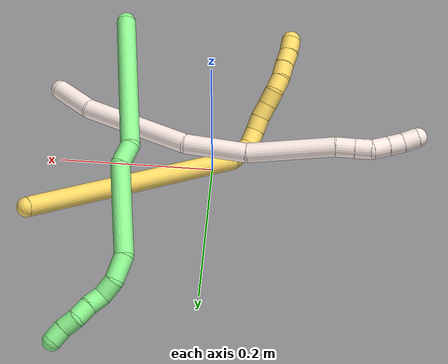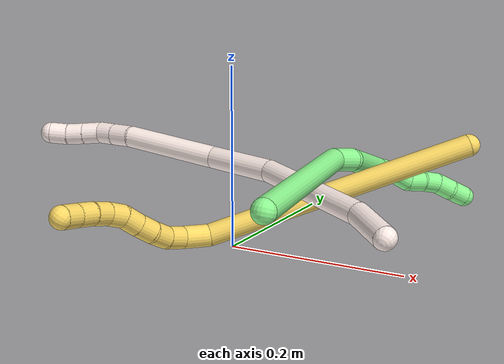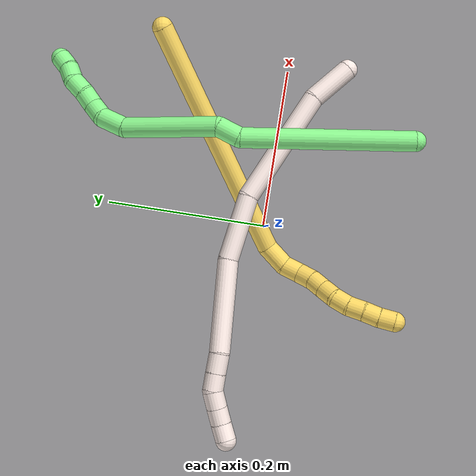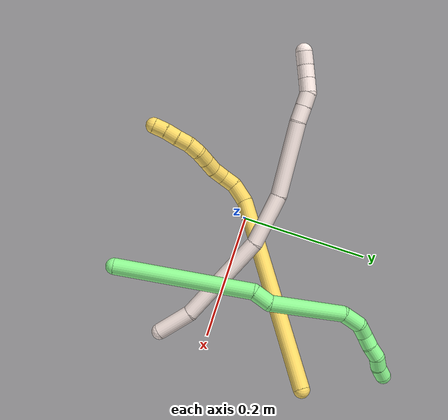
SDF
<sdf version="1.7">
 <world name="default">
  <model name="5">
   <static>0</static>
   <link name="5">
    <collision name="collision-cylinder-e_1_1_4">
     <pose>-0.067582 -0.102955 -0.090907 2.29413 -0.457275 -0.952592</pose>
     <geometry><cylinder><radius>0.0125</radius><length>0.306144</length></cylinder></geometry>
     <surface>
      <friction><ode><mu>1.16</mu><mu2>1.16</mu2><slip1>0</slip1><slip2>0</slip2></ode></friction>
      <contact><ode><kp>1e+06</kp><kd>1</kd><max_vel>0</max_vel><min_depth>0.001</min_depth></ode></contact>
     </surface>
    </collision>
    <visual name="visual-cylinder-e_1_1_4">
     <pose>-0.067582 -0.102955 -0.090907 2.29413 -0.457275 -0.952592</pose>
     <geometry><cylinder><radius>0.0125</radius><length>0.306144</length></cylinder></geometry>
     <material><ambient>1 0.858824 0.4 1</ambient></material>
    </visual>
    <collision name="collision-cylinder-e_2_4_5">
     <pose>-0.14579 -0.210552 -0.192295 2.72468 -0.747483 -2.15229</pose>
     <geometry><cylinder><radius>0.0125</radius><length>0.031262</length></cylinder></geometry>
     <surface>
      <friction><ode><mu>1.16</mu><mu2>1.16</mu2><slip1>0</slip1><slip2>0</slip2></ode></friction>
      <contact><ode><kp>1e+06</kp><kd>1</kd><max_vel>0</max_vel><min_depth>0.001</min_depth></ode></contact>
     </surface>
    </collision>
    <visual name="visual-cylinder-e_2_4_5">
     <pose>-0.14579 -0.210552 -0.192295 2.72468 -0.747483 -2.15229</pose>
     <geometry><cylinder><radius>0.0125</radius><length>0.031262</length></cylinder></geometry>
     <material><ambient>1 0.858824 0.4 1</ambient></material>
    </visual>
    <collision name="collision-cylinder-e_3_5_6">
     <pose>-0.165973 -0.215208 -0.208303 3.13921 -1.04656 -3.13746</pose>
     <geometry><cylinder><radius>0.0125</radius><length>0.022079</length></cylinder></geometry>
     <surface>
      <friction><ode><mu>1.16</mu><mu2>1.16</mu2><slip1>0</slip1><slip2>0</slip2></ode></friction>
      <contact><ode><kp>1e+06</kp><kd>1</kd><max_vel>0</max_vel><min_depth>0.001</min_depth></ode></contact>
     </surface>
    </collision>
    <visual name="visual-cylinder-e_3_5_6">
     <pose>-0.165973 -0.215208 -0.208303 3.13921 -1.04656 -3.13746</pose>
     <geometry><cylinder><radius>0.0125</radius><length>0.022079</length></cylinder></geometry>
     <material><ambient>1 0.858824 0.4 1</ambient></material>
    </visual>
    <collision name="collision-cylinder-e_4_6_7">
     <pose>-0.183265 -0.212731 -0.219906 -2.75272 -0.866851 2.33695</pose>
     <geometry><cylinder><radius>0.0125</radius><length>0.020295</length></cylinder></geometry>
     <surface>
      <friction><ode><mu>1.16</mu><mu2>1.16</mu2><slip1>0</slip1><slip2>0</slip2></ode></friction>
      <contact><ode><kp>1e+06</kp><kd>1</kd><max_vel>0</max_vel><min_depth>0.001</min_depth></ode></contact>
     </surface>
    </collision>
    <visual name="visual-cylinder-e_4_6_7">
     <pose>-0.183265 -0.212731 -0.219906 -2.75272 -0.866851 2.33695</pose>
     <geometry><cylinder><radius>0.0125</radius><length>0.020295</length></cylinder></geometry>
     <material><ambient>1 0.858824 0.4 1</ambient></material>
    </visual>
    <collision name="collision-cylinder-e_5_7_8">
     <pose>-0.197184 -0.20788 -0.233485 -2.83669 -0.666329 2.30594</pose>
     <geometry><cylinder><radius>0.0125</radius><length>0.020008</length></cylinder></geometry>
     <surface>
      <friction><ode><mu>1.16</mu><mu2>1.16</mu2><slip1>0</slip1><slip2>0</slip2></ode></friction>
      <contact><ode><kp>1e+06</kp><kd>1</kd><max_vel>0</max_vel><min_depth>0.001</min_depth></ode></contact>
     </surface>
    </collision>
    <visual name="visual-cylinder-e_5_7_8">
     <pose>-0.197184 -0.20788 -0.233485 -2.83669 -0.666329 2.30594</pose>
     <geometry><cylinder><radius>0.0125</radius><length>0.020008</length></cylinder></geometry>
     <material><ambient>1 0.858824 0.4 1</ambient></material>
    </visual>
    <collision name="collision-cylinder-e_6_8_9">
     <pose>-0.209387 -0.20256 -0.248487 -2.76582 -0.641226 2.1016</pose>
     <geometry><cylinder><radius>0.0125</radius><length>0.020125</length></cylinder></geometry>
     <surface>
      <friction><ode><mu>1.16</mu><mu2>1.16</mu2><slip1>0</slip1><slip2>0</slip2></ode></friction>
      <contact><ode><kp>1e+06</kp><kd>1</kd><max_vel>0</max_vel><min_depth>0.001</min_depth></ode></contact>
     </surface>
    </collision>
    <visual name="visual-cylinder-e_6_8_9">
     <pose>-0.209387 -0.20256 -0.248487 -2.76582 -0.641226 2.1016</pose>
     <geometry><cylinder><radius>0.0125</radius><length>0.020125</length></cylinder></geometry>
     <material><ambient>1 0.858824 0.4 1</ambient></material>
    </visual>
    <collision name="collision-cylinder-e_7_9_10">
     <pose>-0.223437 -0.198854 -0.261932 -3.0166 -0.929959 2.8934</pose>
     <geometry><cylinder><radius>0.0125</radius><length>0.020038</length></cylinder></geometry>
     <surface>
      <friction><ode><mu>1.16</mu><mu2>1.16</mu2><slip1>0</slip1><slip2>0</slip2></ode></friction>
      <contact><ode><kp>1e+06</kp><kd>1</kd><max_vel>0</max_vel><min_depth>0.001</min_depth></ode></contact>
     </surface>
    </collision>
    <visual name="visual-cylinder-e_7_9_10">
     <pose>-0.223437 -0.198854 -0.261932 -3.0166 -0.929959 2.8934</pose>
     <geometry><cylinder><radius>0.0125</radius><length>0.020038</length></cylinder></geometry>
     <material><ambient>1 0.858824 0.4 1</ambient></material>
    </visual>
    <collision name="collision-cylinder-e_8_10_11">
     <pose>-0.240625 -0.197334 -0.271853 -2.9498 -1.15417 2.8482</pose>
     <geometry><cylinder><radius>0.0125</radius><length>0.020027</length></cylinder></geometry>
     <surface>
      <friction><ode><mu>1.16</mu><mu2>1.16</mu2><slip1>0</slip1><slip2>0</slip2></ode></friction>
      <contact><ode><kp>1e+06</kp><kd>1</kd><max_vel>0</max_vel><min_depth>0.001</min_depth></ode></contact>
     </surface>
    </collision>
    <visual name="visual-cylinder-e_8_10_11">
     <pose>-0.240625 -0.197334 -0.271853 -2.9498 -1.15417 2.8482</pose>
     <geometry><cylinder><radius>0.0125</radius><length>0.020027</length></cylinder></geometry>
     <material><ambient>1 0.858824 0.4 1</ambient></material>
    </visual>
    <collision name="collision-cylinder-e_9_11_12">
     <pose>-0.258951 -0.196929 -0.279825 3.05001 -1.15838 -3.0017</pose>
     <geometry><cylinder><radius>0.0125</radius><length>0.020015</length></cylinder></geometry>
     <surface>
      <friction><ode><mu>1.16</mu><mu2>1.16</mu2><slip1>0</slip1><slip2>0</slip2></ode></friction>
      <contact><ode><kp>1e+06</kp><kd>1</kd><max_vel>0</max_vel><min_depth>0.001</min_depth></ode></contact>
     </surface>
    </collision>
    <visual name="visual-cylinder-e_9_11_12">
     <pose>-0.258951 -0.196929 -0.279825 3.05001 -1.15838 -3.0017</pose>
     <geometry><cylinder><radius>0.0125</radius><length>0.020015</length></cylinder></geometry>
     <material><ambient>1 0.858824 0.4 1</ambient></material>
    </visual>
    <collision name="collision-cylinder-e_10_12_2">
     <pose>-0.277637 -0.196895 -0.286871 -3.01116 -1.25811 2.96257</pose>
     <geometry><cylinder><radius>0.0125</radius><length>0.020006</length></cylinder></geometry>
     <surface>
      <friction><ode><mu>1.16</mu><mu2>1.16</mu2><slip1>0</slip1><slip2>0</slip2></ode></friction>
      <contact><ode><kp>1e+06</kp><kd>1</kd><max_vel>0</max_vel><min_depth>0.001</min_depth></ode></contact>
     </surface>
    </collision>
    <visual name="visual-cylinder-e_10_12_2">
     <pose>-0.277637 -0.196895 -0.286871 -3.01116 -1.25811 2.96257</pose>
     <geometry><cylinder><radius>0.0125</radius><length>0.020006</length></cylinder></geometry>
     <material><ambient>1 0.858824 0.4 1</ambient></material>
    </visual>
    <collision name="collision-sphere-2">
     <pose>-0.287156 -0.196495 -0.289922 0 -0 0</pose>
     <geometry><sphere><radius>0.0125</radius></sphere></geometry>
     <surface>
      <friction><ode><mu>1.16</mu><mu2>1.16</mu2><slip1>0</slip1><slip2>0</slip2></ode></friction>
      <contact><ode><kp>1e+06</kp><kd>1</kd><max_vel>0</max_vel><min_depth>0.001</min_depth></ode></contact>
     </surface>
    </collision>
    <visual name="visual-sphere-2">
     <pose>-0.287156 -0.196495 -0.289922 0 -0 0</pose>
     <geometry><sphere><radius>0.0125</radius></sphere></geometry>
     <material><ambient>1 0.858824 0.4 1</ambient></material>
    </visual>
    <collision name="collision-sphere-12">
     <pose>-0.268119 -0.197296 -0.28382 0 -0 0</pose>
     <geometry><sphere><radius>0.0125</radius></sphere></geometry>
     <surface>
      <friction><ode><mu>1.16</mu><mu2>1.16</mu2><slip1>0</slip1><slip2>0</slip2></ode></friction>
      <contact><ode><kp>1e+06</kp><kd>1</kd><max_vel>0</max_vel><min_depth>0.001</min_depth></ode></contact>
     </surface>
    </collision>
    <visual name="visual-sphere-12">
     <pose>-0.268119 -0.197296 -0.28382 0 -0 0</pose>
     <geometry><sphere><radius>0.0125</radius></sphere></geometry>
     <material><ambient>1 0.858824 0.4 1</ambient></material>
    </visual>
    <collision name="collision-sphere-11">
     <pose>-0.249782 -0.196562 -0.275831 0 -0 0</pose>
     <geometry><sphere><radius>0.0125</radius></sphere></geometry>
     <surface>
      <friction><ode><mu>1.16</mu><mu2>1.16</mu2><slip1>0</slip1><slip2>0</slip2></ode></friction>
      <contact><ode><kp>1e+06</kp><kd>1</kd><max_vel>0</max_vel><min_depth>0.001</min_depth></ode></contact>
     </surface>
    </collision>
    <visual name="visual-sphere-11">
     <pose>-0.249782 -0.196562 -0.275831 0 -0 0</pose>
     <geometry><sphere><radius>0.0125</radius></sphere></geometry>
     <material><ambient>1 0.858824 0.4 1</ambient></material>
    </visual>
    <collision name="collision-sphere-10">
     <pose>-0.231469 -0.198107 -0.267875 0 -0 0</pose>
     <geometry><sphere><radius>0.0125</radius></sphere></geometry>
     <surface>
      <friction><ode><mu>1.16</mu><mu2>1.16</mu2><slip1>0</slip1><slip2>0</slip2></ode></friction>
      <contact><ode><kp>1e+06</kp><kd>1</kd><max_vel>0</max_vel><min_depth>0.001</min_depth></ode></contact>
     </surface>
    </collision>
    <visual name="visual-sphere-10">
     <pose>-0.231469 -0.198107 -0.267875 0 -0 0</pose>
     <geometry><sphere><radius>0.0125</radius></sphere></geometry>
     <material><ambient>1 0.858824 0.4 1</ambient></material>
    </visual>
    <collision name="collision-sphere-9">
     <pose>-0.215406 -0.1996 -0.255988 0 -0 0</pose>
     <geometry><sphere><radius>0.0125</radius></sphere></geometry>
     <surface>
      <friction><ode><mu>1.16</mu><mu2>1.16</mu2><slip1>0</slip1><slip2>0</slip2></ode></friction>
      <contact><ode><kp>1e+06</kp><kd>1</kd><max_vel>0</max_vel><min_depth>0.001</min_depth></ode></contact>
     </surface>
    </collision>
    <visual name="visual-sphere-9">
     <pose>-0.215406 -0.1996 -0.255988 0 -0 0</pose>
     <geometry><sphere><radius>0.0125</radius></sphere></geometry>
     <material><ambient>1 0.858824 0.4 1</ambient></material>
    </visual>
    <collision name="collision-sphere-4">
     <pose>-0.135164 -0.20591 -0.181813 0 -0 0</pose>
     <geometry><sphere><radius>0.0125</radius></sphere></geometry>
     <surface>
      <friction><ode><mu>1.16</mu><mu2>1.16</mu2><slip1>0</slip1><slip2>0</slip2></ode></friction>
      <contact><ode><kp>1e+06</kp><kd>1</kd><max_vel>0</max_vel><min_depth>0.001</min_depth></ode></contact>
     </surface>
    </collision>
    <visual name="visual-sphere-4">
     <pose>-0.135164 -0.20591 -0.181813 0 -0 0</pose>
     <geometry><sphere><radius>0.0125</radius></sphere></geometry>
     <material><ambient>1 0.858824 0.4 1</ambient></material>
    </visual>
    <collision name="collision-sphere-1">
     <geometry><sphere><radius>0.0125</radius></sphere></geometry>
     <surface>
      <friction><ode><mu>1.16</mu><mu2>1.16</mu2><slip1>0</slip1><slip2>0</slip2></ode></friction>
      <contact><ode><kp>1e+06</kp><kd>1</kd><max_vel>0</max_vel><min_depth>0.001</min_depth></ode></contact>
     </surface>
    </collision>
    <visual name="visual-sphere-1">
     <geometry><sphere><radius>0.0125</radius></sphere></geometry>
     <material><ambient>1 0.858824 0.4 1</ambient></material>
    </visual>
    <collision name="collision-sphere-8">
     <pose>-0.203368 -0.205519 -0.240986 0 -0 0</pose>
     <geometry><sphere><radius>0.0125</radius></sphere></geometry>
     <surface>
      <friction><ode><mu>1.16</mu><mu2>1.16</mu2><slip1>0</slip1><slip2>0</slip2></ode></friction>
      <contact><ode><kp>1e+06</kp><kd>1</kd><max_vel>0</max_vel><min_depth>0.001</min_depth></ode></contact>
     </surface>
    </collision>
    <visual name="visual-sphere-8">
     <pose>-0.203368 -0.205519 -0.240986 0 -0 0</pose>
     <geometry><sphere><radius>0.0125</radius></sphere></geometry>
     <material><ambient>1 0.858824 0.4 1</ambient></material>
    </visual>
    <collision name="collision-sphere-5">
     <pose>-0.156416 -0.215194 -0.202777 0 -0 0</pose>
     <geometry><sphere><radius>0.0125</radius></sphere></geometry>
     <surface>
      <friction><ode><mu>1.16</mu><mu2>1.16</mu2><slip1>0</slip1><slip2>0</slip2></ode></friction>
      <contact><ode><kp>1e+06</kp><kd>1</kd><max_vel>0</max_vel><min_depth>0.001</min_depth></ode></contact>
     </surface>
    </collision>
    <visual name="visual-sphere-5">
     <pose>-0.156416 -0.215194 -0.202777 0 -0 0</pose>
     <geometry><sphere><radius>0.0125</radius></sphere></geometry>
     <material><ambient>1 0.858824 0.4 1</ambient></material>
    </visual>
    <collision name="collision-sphere-6">
     <pose>-0.17553 -0.215221 -0.213829 0 -0 0</pose>
     <geometry><sphere><radius>0.0125</radius></sphere></geometry>
     <surface>
      <friction><ode><mu>1.16</mu><mu2>1.16</mu2><slip1>0</slip1><slip2>0</slip2></ode></friction>
      <contact><ode><kp>1e+06</kp><kd>1</kd><max_vel>0</max_vel><min_depth>0.001</min_depth></ode></contact>
     </surface>
    </collision>
    <visual name="visual-sphere-6">
     <pose>-0.17553 -0.215221 -0.213829 0 -0 0</pose>
     <geometry><sphere><radius>0.0125</radius></sphere></geometry>
     <material><ambient>1 0.858824 0.4 1</ambient></material>
    </visual>
    <collision name="collision-sphere-7">
     <pose>-0.191 -0.21024 -0.225983 0 -0 0</pose>
     <geometry><sphere><radius>0.0125</radius></sphere></geometry>
     <surface>
      <friction><ode><mu>1.16</mu><mu2>1.16</mu2><slip1>0</slip1><slip2>0</slip2></ode></friction>
      <contact><ode><kp>1e+06</kp><kd>1</kd><max_vel>0</max_vel><min_depth>0.001</min_depth></ode></contact>
     </surface>
    </collision>
    <visual name="visual-sphere-7">
     <pose>-0.191 -0.21024 -0.225983 0 -0 0</pose>
     <geometry><sphere><radius>0.0125</radius></sphere></geometry>
     <material><ambient>1 0.858824 0.4 1</ambient></material>
    </visual>
    <inertial>
     <pose>-0.121649 -0.142447 -0.149219 0 -0 0</pose>
     <mass>0.5</mass>
     <inertia>
      <ixx>-0.000536</ixx>
      <ixy>0</ixy>
      <ixz>0</ixz>
      <iyy>-0.002032</iyy>
      <iyz>0</iyz>
      <izz>0.002667</izz>
     </inertia>
    </inertial>
   </link>
   <pose>0.213303 0.157756 0.106703 2.09259 -0.055209 1.71647</pose>
  </model>
  <model name="11">
   <static>0</static>
   <link name="11">
    <collision name="collision-cylinder-e_1_1_4">
     <pose>-0.019503 -0.007516 -0.018575 2.75708 -0.77187 -2.24802</pose>
     <geometry><cylinder><radius>0.0125</radius><length>0.055924</length></cylinder></geometry>
     <surface>
      <friction><ode><mu>1.16</mu><mu2>1.16</mu2><slip1>0</slip1><slip2>0</slip2></ode></friction>
      <contact><ode><kp>1e+06</kp><kd>1</kd><max_vel>0</max_vel><min_depth>0.001</min_depth></ode></contact>
     </surface>
    </collision>
    <visual name="visual-cylinder-e_1_1_4">
     <pose>-0.019503 -0.007516 -0.018575 2.75708 -0.77187 -2.24802</pose>
     <geometry><cylinder><radius>0.0125</radius><length>0.055924</length></cylinder></geometry>
     <material><ambient>1 0.933333 0.909804 1</ambient></material>
    </visual>
    <collision name="collision-cylinder-e_2_4_5">
     <pose>-0.101413 -0.03329 -0.069127 2.62281 -1.03773 -2.27157</pose>
     <geometry><cylinder><radius>0.0125</radius><length>0.144922</length></cylinder></geometry>
     <surface>
      <friction><ode><mu>1.16</mu><mu2>1.16</mu2><slip1>0</slip1><slip2>0</slip2></ode></friction>
      <contact><ode><kp>1e+06</kp><kd>1</kd><max_vel>0</max_vel><min_depth>0.001</min_depth></ode></contact>
     </surface>
    </collision>
    <visual name="visual-cylinder-e_2_4_5">
     <pose>-0.101413 -0.03329 -0.069127 2.62281 -1.03773 -2.27157</pose>
     <geometry><cylinder><radius>0.0125</radius><length>0.144922</length></cylinder></geometry>
     <material><ambient>1 0.933333 0.909804 1</ambient></material>
    </visual>
    <collision name="collision-cylinder-e_3_5_6">
     <pose>-0.202277 -0.059975 -0.108508 2.29159 -1.287 -2.0557</pose>
     <geometry><cylinder><radius>0.0125</radius><length>0.080119</length></cylinder></geometry>
     <surface>
      <friction><ode><mu>1.16</mu><mu2>1.16</mu2><slip1>0</slip1><slip2>0</slip2></ode></friction>
      <contact><ode><kp>1e+06</kp><kd>1</kd><max_vel>0</max_vel><min_depth>0.001</min_depth></ode></contact>
     </surface>
    </collision>
    <visual name="visual-cylinder-e_3_5_6">
     <pose>-0.202277 -0.059975 -0.108508 2.29159 -1.287 -2.0557</pose>
     <geometry><cylinder><radius>0.0125</radius><length>0.080119</length></cylinder></geometry>
     <material><ambient>1 0.933333 0.909804 1</ambient></material>
    </visual>
    <collision name="collision-cylinder-e_4_6_7">
     <pose>-0.296552 -0.071667 -0.116909 1.86761 -1.50969 -1.80865</pose>
     <geometry><cylinder><radius>0.0125</radius><length>0.111844</length></cylinder></geometry>
     <surface>
      <friction><ode><mu>1.16</mu><mu2>1.16</mu2><slip1>0</slip1><slip2>0</slip2></ode></friction>
      <contact><ode><kp>1e+06</kp><kd>1</kd><max_vel>0</max_vel><min_depth>0.001</min_depth></ode></contact>
     </surface>
    </collision>
    <visual name="visual-cylinder-e_4_6_7">
     <pose>-0.296552 -0.071667 -0.116909 1.86761 -1.50969 -1.80865</pose>
     <geometry><cylinder><radius>0.0125</radius><length>0.111844</length></cylinder></geometry>
     <material><ambient>1 0.933333 0.909804 1</ambient></material>
    </visual>
    <collision name="collision-cylinder-e_5_7_8">
     <pose>-0.364199 -0.077515 -0.118536 1.80942 -1.34985 -1.58895</pose>
     <geometry><cylinder><radius>0.0125</radius><length>0.024249</length></cylinder></geometry>
     <surface>
      <friction><ode><mu>1.16</mu><mu2>1.16</mu2><slip1>0</slip1><slip2>0</slip2></ode></friction>
      <contact><ode><kp>1e+06</kp><kd>1</kd><max_vel>0</max_vel><min_depth>0.001</min_depth></ode></contact>
     </surface>
    </collision>
    <visual name="visual-cylinder-e_5_7_8">
     <pose>-0.364199 -0.077515 -0.118536 1.80942 -1.34985 -1.58895</pose>
     <geometry><cylinder><radius>0.0125</radius><length>0.024249</length></cylinder></geometry>
     <material><ambient>1 0.933333 0.909804 1</ambient></material>
    </visual>
    <collision name="collision-cylinder-e_6_8_9">
     <pose>-0.386412 -0.082162 -0.119633 1.794 -1.36964 -1.59334</pose>
     <geometry><cylinder><radius>0.0125</radius><length>0.021194</length></cylinder></geometry>
     <surface>
      <friction><ode><mu>1.16</mu><mu2>1.16</mu2><slip1>0</slip1><slip2>0</slip2></ode></friction>
      <contact><ode><kp>1e+06</kp><kd>1</kd><max_vel>0</max_vel><min_depth>0.001</min_depth></ode></contact>
     </surface>
    </collision>
    <visual name="visual-cylinder-e_6_8_9">
     <pose>-0.386412 -0.082162 -0.119633 1.794 -1.36964 -1.59334</pose>
     <geometry><cylinder><radius>0.0125</radius><length>0.021194</length></cylinder></geometry>
     <material><ambient>1 0.933333 0.909804 1</ambient></material>
    </visual>
    <collision name="collision-cylinder-e_7_9_10">
     <pose>-0.406578 -0.085391 -0.116272 0.295272 -1.18236 -0.198999</pose>
     <geometry><cylinder><radius>0.0125</radius><length>0.02114</length></cylinder></geometry>
     <surface>
      <friction><ode><mu>1.16</mu><mu2>1.16</mu2><slip1>0</slip1><slip2>0</slip2></ode></friction>
      <contact><ode><kp>1e+06</kp><kd>1</kd><max_vel>0</max_vel><min_depth>0.001</min_depth></ode></contact>
     </surface>
    </collision>
    <visual name="visual-cylinder-e_7_9_10">
     <pose>-0.406578 -0.085391 -0.116272 0.295272 -1.18236 -0.198999</pose>
     <geometry><cylinder><radius>0.0125</radius><length>0.02114</length></cylinder></geometry>
     <material><ambient>1 0.933333 0.909804 1</ambient></material>
    </visual>
    <collision name="collision-cylinder-e_8_10_11">
     <pose>-0.425647 -0.087393 -0.108757 0.223344 -1.18436 -0.15059</pose>
     <geometry><cylinder><radius>0.0125</radius><length>0.02005</length></cylinder></geometry>
     <surface>
      <friction><ode><mu>1.16</mu><mu2>1.16</mu2><slip1>0</slip1><slip2>0</slip2></ode></friction>
      <contact><ode><kp>1e+06</kp><kd>1</kd><max_vel>0</max_vel><min_depth>0.001</min_depth></ode></contact>
     </surface>
    </collision>
    <visual name="visual-cylinder-e_8_10_11">
     <pose>-0.425647 -0.087393 -0.108757 0.223344 -1.18436 -0.15059</pose>
     <geometry><cylinder><radius>0.0125</radius><length>0.02005</length></cylinder></geometry>
     <material><ambient>1 0.933333 0.909804 1</ambient></material>
    </visual>
    <collision name="collision-cylinder-e_9_11_2">
     <pose>-0.444616 -0.087703 -0.101665 -0.153466 -1.22871 0.108364</pose>
     <geometry><cylinder><radius>0.0125</radius><length>0.020558</length></cylinder></geometry>
     <surface>
      <friction><ode><mu>1.16</mu><mu2>1.16</mu2><slip1>0</slip1><slip2>0</slip2></ode></friction>
      <contact><ode><kp>1e+06</kp><kd>1</kd><max_vel>0</max_vel><min_depth>0.001</min_depth></ode></contact>
     </surface>
    </collision>
    <visual name="visual-cylinder-e_9_11_2">
     <pose>-0.444616 -0.087703 -0.101665 -0.153466 -1.22871 0.108364</pose>
     <geometry><cylinder><radius>0.0125</radius><length>0.020558</length></cylinder></geometry>
     <material><ambient>1 0.933333 0.909804 1</ambient></material>
    </visual>
    <collision name="collision-sphere-2">
     <pose>-0.454299 -0.087176 -0.098257 0 -0 0</pose>
     <geometry><sphere><radius>0.0125</radius></sphere></geometry>
     <surface>
      <friction><ode><mu>1.16</mu><mu2>1.16</mu2><slip1>0</slip1><slip2>0</slip2></ode></friction>
      <contact><ode><kp>1e+06</kp><kd>1</kd><max_vel>0</max_vel><min_depth>0.001</min_depth></ode></contact>
     </surface>
    </collision>
    <visual name="visual-sphere-2">
     <pose>-0.454299 -0.087176 -0.098257 0 -0 0</pose>
     <geometry><sphere><radius>0.0125</radius></sphere></geometry>
     <material><ambient>1 0.933333 0.909804 1</ambient></material>
    </visual>
    <collision name="collision-sphere-11">
     <pose>-0.434933 -0.08823 -0.105072 0 -0 0</pose>
     <geometry><sphere><radius>0.0125</radius></sphere></geometry>
     <surface>
      <friction><ode><mu>1.16</mu><mu2>1.16</mu2><slip1>0</slip1><slip2>0</slip2></ode></friction>
      <contact><ode><kp>1e+06</kp><kd>1</kd><max_vel>0</max_vel><min_depth>0.001</min_depth></ode></contact>
     </surface>
    </collision>
    <visual name="visual-sphere-11">
     <pose>-0.434933 -0.08823 -0.105072 0 -0 0</pose>
     <geometry><sphere><radius>0.0125</radius></sphere></geometry>
     <material><ambient>1 0.933333 0.909804 1</ambient></material>
    </visual>
    <collision name="collision-sphere-10">
     <pose>-0.416361 -0.086556 -0.112441 0 -0 0</pose>
     <geometry><sphere><radius>0.0125</radius></sphere></geometry>
     <surface>
      <friction><ode><mu>1.16</mu><mu2>1.16</mu2><slip1>0</slip1><slip2>0</slip2></ode></friction>
      <contact><ode><kp>1e+06</kp><kd>1</kd><max_vel>0</max_vel><min_depth>0.001</min_depth></ode></contact>
     </surface>
    </collision>
    <visual name="visual-sphere-10">
     <pose>-0.416361 -0.086556 -0.112441 0 -0 0</pose>
     <geometry><sphere><radius>0.0125</radius></sphere></geometry>
     <material><ambient>1 0.933333 0.909804 1</ambient></material>
    </visual>
    <collision name="collision-sphere-9">
     <pose>-0.396796 -0.084226 -0.120102 0 -0 0</pose>
     <geometry><sphere><radius>0.0125</radius></sphere></geometry>
     <surface>
      <friction><ode><mu>1.16</mu><mu2>1.16</mu2><slip1>0</slip1><slip2>0</slip2></ode></friction>
      <contact><ode><kp>1e+06</kp><kd>1</kd><max_vel>0</max_vel><min_depth>0.001</min_depth></ode></contact>
     </surface>
    </collision>
    <visual name="visual-sphere-9">
     <pose>-0.396796 -0.084226 -0.120102 0 -0 0</pose>
     <geometry><sphere><radius>0.0125</radius></sphere></geometry>
     <material><ambient>1 0.933333 0.909804 1</ambient></material>
    </visual>
    <collision name="collision-sphere-4">
     <pose>-0.039006 -0.015033 -0.037149 0 -0 0</pose>
     <geometry><sphere><radius>0.0125</radius></sphere></geometry>
     <surface>
      <friction><ode><mu>1.16</mu><mu2>1.16</mu2><slip1>0</slip1><slip2>0</slip2></ode></friction>
      <contact><ode><kp>1e+06</kp><kd>1</kd><max_vel>0</max_vel><min_depth>0.001</min_depth></ode></contact>
     </surface>
    </collision>
    <visual name="visual-sphere-4">
     <pose>-0.039006 -0.015033 -0.037149 0 -0 0</pose>
     <geometry><sphere><radius>0.0125</radius></sphere></geometry>
     <material><ambient>1 0.933333 0.909804 1</ambient></material>
    </visual>
    <collision name="collision-sphere-1">
     <geometry><sphere><radius>0.0125</radius></sphere></geometry>
     <surface>
      <friction><ode><mu>1.16</mu><mu2>1.16</mu2><slip1>0</slip1><slip2>0</slip2></ode></friction>
      <contact><ode><kp>1e+06</kp><kd>1</kd><max_vel>0</max_vel><min_depth>0.001</min_depth></ode></contact>
     </surface>
    </collision>
    <visual name="visual-sphere-1">
     <geometry><sphere><radius>0.0125</radius></sphere></geometry>
     <material><ambient>1 0.933333 0.909804 1</ambient></material>
    </visual>
    <collision name="collision-sphere-8">
     <pose>-0.376029 -0.080097 -0.119164 0 -0 0</pose>
     <geometry><sphere><radius>0.0125</radius></sphere></geometry>
     <surface>
      <friction><ode><mu>1.16</mu><mu2>1.16</mu2><slip1>0</slip1><slip2>0</slip2></ode></friction>
      <contact><ode><kp>1e+06</kp><kd>1</kd><max_vel>0</max_vel><min_depth>0.001</min_depth></ode></contact>
     </surface>
    </collision>
    <visual name="visual-sphere-8">
     <pose>-0.376029 -0.080097 -0.119164 0 -0 0</pose>
     <geometry><sphere><radius>0.0125</radius></sphere></geometry>
     <material><ambient>1 0.933333 0.909804 1</ambient></material>
    </visual>
    <collision name="collision-sphere-5">
     <pose>-0.16382 -0.051548 -0.101105 0 -0 0</pose>
     <geometry><sphere><radius>0.0125</radius></sphere></geometry>
     <surface>
      <friction><ode><mu>1.16</mu><mu2>1.16</mu2><slip1>0</slip1><slip2>0</slip2></ode></friction>
      <contact><ode><kp>1e+06</kp><kd>1</kd><max_vel>0</max_vel><min_depth>0.001</min_depth></ode></contact>
     </surface>
    </collision>
    <visual name="visual-sphere-5">
     <pose>-0.16382 -0.051548 -0.101105 0 -0 0</pose>
     <geometry><sphere><radius>0.0125</radius></sphere></geometry>
     <material><ambient>1 0.933333 0.909804 1</ambient></material>
    </visual>
    <collision name="collision-sphere-6">
     <pose>-0.240734 -0.068401 -0.115911 0 -0 0</pose>
     <geometry><sphere><radius>0.0125</radius></sphere></geometry>
     <surface>
      <friction><ode><mu>1.16</mu><mu2>1.16</mu2><slip1>0</slip1><slip2>0</slip2></ode></friction>
      <contact><ode><kp>1e+06</kp><kd>1</kd><max_vel>0</max_vel><min_depth>0.001</min_depth></ode></contact>
     </surface>
    </collision>
    <visual name="visual-sphere-6">
     <pose>-0.240734 -0.068401 -0.115911 0 -0 0</pose>
     <geometry><sphere><radius>0.0125</radius></sphere></geometry>
     <material><ambient>1 0.933333 0.909804 1</ambient></material>
    </visual>
    <collision name="collision-sphere-7">
     <pose>-0.352369 -0.074933 -0.117908 0 -0 0</pose>
     <geometry><sphere><radius>0.0125</radius></sphere></geometry>
     <surface>
      <friction><ode><mu>1.16</mu><mu2>1.16</mu2><slip1>0</slip1><slip2>0</slip2></ode></friction>
      <contact><ode><kp>1e+06</kp><kd>1</kd><max_vel>0</max_vel><min_depth>0.001</min_depth></ode></contact>
     </surface>
    </collision>
    <visual name="visual-sphere-7">
     <pose>-0.352369 -0.074933 -0.117908 0 -0 0</pose>
     <geometry><sphere><radius>0.0125</radius></sphere></geometry>
     <material><ambient>1 0.933333 0.909804 1</ambient></material>
    </visual>
    <inertial>
     <pose>-0.216905 -0.054094 -0.089929 0 -0 0</pose>
     <mass>0.5</mass>
     <inertia>
      <ixx>-0.000264</ixx>
      <ixy>0</ixy>
      <ixz>0</ixz>
      <iyy>0.000279</iyy>
      <iyz>0</iyz>
      <izz>0.000488</izz>
     </inertia>
    </inertial>
   </link>
   <pose>0.205067 -0.069711 0.06009 1.99383 0.178223 0.105522</pose>
  </model>
  <model name="13">
   <static>0</static>
   <link name="13">
    <collision name="collision-cylinder-e_1_1_4">
     <pose>-0.072884 0.07064 0.026775 -1.20849 -0.76748 0.543697</pose>
     <geometry><cylinder><radius>0.0125</radius><length>0.209943</length></cylinder></geometry>
     <surface>
      <friction><ode><mu>1.16</mu><mu2>1.16</mu2><slip1>0</slip1><slip2>0</slip2></ode></friction>
      <contact><ode><kp>1e+06</kp><kd>1</kd><max_vel>0</max_vel><min_depth>0.001</min_depth></ode></contact>
     </surface>
    </collision>
    <visual name="visual-cylinder-e_1_1_4">
     <pose>-0.072884 0.07064 0.026775 -1.20849 -0.76748 0.543697</pose>
     <geometry><cylinder><radius>0.0125</radius><length>0.209943</length></cylinder></geometry>
     <material><ambient>0.564706 0.984314 0.572549 1</ambient></material>
    </visual>
    <collision name="collision-cylinder-e_2_4_5">
     <pose>-0.150243 0.155042 0.055497 -1.43024 -0.31147 0.27104</pose>
     <geometry><cylinder><radius>0.0125</radius><length>0.029204</length></cylinder></geometry>
     <surface>
      <friction><ode><mu>1.16</mu><mu2>1.16</mu2><slip1>0</slip1><slip2>0</slip2></ode></friction>
      <contact><ode><kp>1e+06</kp><kd>1</kd><max_vel>0</max_vel><min_depth>0.001</min_depth></ode></contact>
     </surface>
    </collision>
    <visual name="visual-cylinder-e_2_4_5">
     <pose>-0.150243 0.155042 0.055497 -1.43024 -0.31147 0.27104</pose>
     <geometry><cylinder><radius>0.0125</radius><length>0.029204</length></cylinder></geometry>
     <material><ambient>0.564706 0.984314 0.572549 1</ambient></material>
    </visual>
    <collision name="collision-cylinder-e_3_5_6">
     <pose>-0.196471 0.21218 0.055127 -1.62417 -0.765633 0.803348</pose>
     <geometry><cylinder><radius>0.0125</radius><length>0.120502</length></cylinder></geometry>
     <surface>
      <friction><ode><mu>1.16</mu><mu2>1.16</mu2><slip1>0</slip1><slip2>0</slip2></ode></friction>
      <contact><ode><kp>1e+06</kp><kd>1</kd><max_vel>0</max_vel><min_depth>0.001</min_depth></ode></contact>
     </surface>
    </collision>
    <visual name="visual-cylinder-e_3_5_6">
     <pose>-0.196471 0.21218 0.055127 -1.62417 -0.765633 0.803348</pose>
     <geometry><cylinder><radius>0.0125</radius><length>0.120502</length></cylinder></geometry>
     <material><ambient>0.564706 0.984314 0.572549 1</ambient></material>
    </visual>
    <collision name="collision-cylinder-e_4_6_7">
     <pose>-0.244004 0.271404 0.051745 -1.6379 -0.348974 0.372673</pose>
     <geometry><cylinder><radius>0.0125</radius><length>0.033806</length></cylinder></geometry>
     <surface>
      <friction><ode><mu>1.16</mu><mu2>1.16</mu2><slip1>0</slip1><slip2>0</slip2></ode></friction>
      <contact><ode><kp>1e+06</kp><kd>1</kd><max_vel>0</max_vel><min_depth>0.001</min_depth></ode></contact>
     </surface>
    </collision>
    <visual name="visual-cylinder-e_4_6_7">
     <pose>-0.244004 0.271404 0.051745 -1.6379 -0.348974 0.372673</pose>
     <geometry><cylinder><radius>0.0125</radius><length>0.033806</length></cylinder></geometry>
     <material><ambient>0.564706 0.984314 0.572549 1</ambient></material>
    </visual>
    <collision name="collision-cylinder-e_5_7_8">
     <pose>-0.249284 0.298433 0.047436 -1.85315 0.042888 -0.057091</pose>
     <geometry><cylinder><radius>0.0125</radius><length>0.023306</length></cylinder></geometry>
     <surface>
      <friction><ode><mu>1.16</mu><mu2>1.16</mu2><slip1>0</slip1><slip2>0</slip2></ode></friction>
      <contact><ode><kp>1e+06</kp><kd>1</kd><max_vel>0</max_vel><min_depth>0.001</min_depth></ode></contact>
     </surface>
    </collision>
    <visual name="visual-cylinder-e_5_7_8">
     <pose>-0.249284 0.298433 0.047436 -1.85315 0.042888 -0.057091</pose>
     <geometry><cylinder><radius>0.0125</radius><length>0.023306</length></cylinder></geometry>
     <material><ambient>0.564706 0.984314 0.572549 1</ambient></material>
    </visual>
    <collision name="collision-cylinder-e_6_8_9">
     <pose>-0.247151 0.319742 0.045836 -1.40992 0.157959 -0.134469</pose>
     <geometry><cylinder><radius>0.0125</radius><length>0.020778</length></cylinder></geometry>
     <surface>
      <friction><ode><mu>1.16</mu><mu2>1.16</mu2><slip1>0</slip1><slip2>0</slip2></ode></friction>
      <contact><ode><kp>1e+06</kp><kd>1</kd><max_vel>0</max_vel><min_depth>0.001</min_depth></ode></contact>
     </surface>
    </collision>
    <visual name="visual-cylinder-e_6_8_9">
     <pose>-0.247151 0.319742 0.045836 -1.40992 0.157959 -0.134469</pose>
     <geometry><cylinder><radius>0.0125</radius><length>0.020778</length></cylinder></geometry>
     <material><ambient>0.564706 0.984314 0.572549 1</ambient></material>
    </visual>
    <collision name="collision-cylinder-e_7_9_10">
     <pose>-0.245365 0.340552 0.048016 -1.52063 0.014146 -0.013454</pose>
     <geometry><cylinder><radius>0.0125</radius><length>0.021396</length></cylinder></geometry>
     <surface>
      <friction><ode><mu>1.16</mu><mu2>1.16</mu2><slip1>0</slip1><slip2>0</slip2></ode></friction>
      <contact><ode><kp>1e+06</kp><kd>1</kd><max_vel>0</max_vel><min_depth>0.001</min_depth></ode></contact>
     </surface>
    </collision>
    <visual name="visual-cylinder-e_7_9_10">
     <pose>-0.245365 0.340552 0.048016 -1.52063 0.014146 -0.013454</pose>
     <geometry><cylinder><radius>0.0125</radius><length>0.021396</length></cylinder></geometry>
     <material><ambient>0.564706 0.984314 0.572549 1</ambient></material>
    </visual>
    <collision name="collision-cylinder-e_8_10_11">
     <pose>-0.242104 0.360872 0.045949 -1.83465 0.302029 -0.392362</pose>
     <geometry><cylinder><radius>0.0125</radius><length>0.020911</length></cylinder></geometry>
     <surface>
      <friction><ode><mu>1.16</mu><mu2>1.16</mu2><slip1>0</slip1><slip2>0</slip2></ode></friction>
      <contact><ode><kp>1e+06</kp><kd>1</kd><max_vel>0</max_vel><min_depth>0.001</min_depth></ode></contact>
     </surface>
    </collision>
    <visual name="visual-cylinder-e_8_10_11">
     <pose>-0.242104 0.360872 0.045949 -1.83465 0.302029 -0.392362</pose>
     <geometry><cylinder><radius>0.0125</radius><length>0.020911</length></cylinder></geometry>
     <material><ambient>0.564706 0.984314 0.572549 1</ambient></material>
    </visual>
    <collision name="collision-cylinder-e_9_11_2">
     <pose>-0.238456 0.380344 0.041215 -1.78408 0.053414 -0.066212</pose>
     <geometry><cylinder><radius>0.0125</radius><length>0.020156</length></cylinder></geometry>
     <surface>
      <friction><ode><mu>1.16</mu><mu2>1.16</mu2><slip1>0</slip1><slip2>0</slip2></ode></friction>
      <contact><ode><kp>1e+06</kp><kd>1</kd><max_vel>0</max_vel><min_depth>0.001</min_depth></ode></contact>
     </surface>
    </collision>
    <visual name="visual-cylinder-e_9_11_2">
     <pose>-0.238456 0.380344 0.041215 -1.78408 0.053414 -0.066212</pose>
     <geometry><cylinder><radius>0.0125</radius><length>0.020156</length></cylinder></geometry>
     <material><ambient>0.564706 0.984314 0.572549 1</ambient></material>
    </visual>
    <collision name="collision-sphere-2">
     <pose>-0.237918 0.39018 0.039085 0 -0 0</pose>
     <geometry><sphere><radius>0.0125</radius></sphere></geometry>
     <surface>
      <friction><ode><mu>1.16</mu><mu2>1.16</mu2><slip1>0</slip1><slip2>0</slip2></ode></friction>
      <contact><ode><kp>1e+06</kp><kd>1</kd><max_vel>0</max_vel><min_depth>0.001</min_depth></ode></contact>
     </surface>
    </collision>
    <visual name="visual-sphere-2">
     <pose>-0.237918 0.39018 0.039085 0 -0 0</pose>
     <geometry><sphere><radius>0.0125</radius></sphere></geometry>
     <material><ambient>0.564706 0.984314 0.572549 1</ambient></material>
    </visual>
    <collision name="collision-sphere-11">
     <pose>-0.238994 0.370509 0.043345 0 -0 0</pose>
     <geometry><sphere><radius>0.0125</radius></sphere></geometry>
     <surface>
      <friction><ode><mu>1.16</mu><mu2>1.16</mu2><slip1>0</slip1><slip2>0</slip2></ode></friction>
      <contact><ode><kp>1e+06</kp><kd>1</kd><max_vel>0</max_vel><min_depth>0.001</min_depth></ode></contact>
     </surface>
    </collision>
    <visual name="visual-sphere-11">
     <pose>-0.238994 0.370509 0.043345 0 -0 0</pose>
     <geometry><sphere><radius>0.0125</radius></sphere></geometry>
     <material><ambient>0.564706 0.984314 0.572549 1</ambient></material>
    </visual>
    <collision name="collision-sphere-10">
     <pose>-0.245214 0.351235 0.048552 0 -0 0</pose>
     <geometry><sphere><radius>0.0125</radius></sphere></geometry>
     <surface>
      <friction><ode><mu>1.16</mu><mu2>1.16</mu2><slip1>0</slip1><slip2>0</slip2></ode></friction>
      <contact><ode><kp>1e+06</kp><kd>1</kd><max_vel>0</max_vel><min_depth>0.001</min_depth></ode></contact>
     </surface>
    </collision>
    <visual name="visual-sphere-10">
     <pose>-0.245214 0.351235 0.048552 0 -0 0</pose>
     <geometry><sphere><radius>0.0125</radius></sphere></geometry>
     <material><ambient>0.564706 0.984314 0.572549 1</ambient></material>
    </visual>
    <collision name="collision-sphere-9">
     <pose>-0.245516 0.329869 0.047479 0 -0 0</pose>
     <geometry><sphere><radius>0.0125</radius></sphere></geometry>
     <surface>
      <friction><ode><mu>1.16</mu><mu2>1.16</mu2><slip1>0</slip1><slip2>0</slip2></ode></friction>
      <contact><ode><kp>1e+06</kp><kd>1</kd><max_vel>0</max_vel><min_depth>0.001</min_depth></ode></contact>
     </surface>
    </collision>
    <visual name="visual-sphere-9">
     <pose>-0.245516 0.329869 0.047479 0 -0 0</pose>
     <geometry><sphere><radius>0.0125</radius></sphere></geometry>
     <material><ambient>0.564706 0.984314 0.572549 1</ambient></material>
    </visual>
    <collision name="collision-sphere-4">
     <pose>-0.145768 0.14128 0.05355 0 -0 0</pose>
     <geometry><sphere><radius>0.0125</radius></sphere></geometry>
     <surface>
      <friction><ode><mu>1.16</mu><mu2>1.16</mu2><slip1>0</slip1><slip2>0</slip2></ode></friction>
      <contact><ode><kp>1e+06</kp><kd>1</kd><max_vel>0</max_vel><min_depth>0.001</min_depth></ode></contact>
     </surface>
    </collision>
    <visual name="visual-sphere-4">
     <pose>-0.145768 0.14128 0.05355 0 -0 0</pose>
     <geometry><sphere><radius>0.0125</radius></sphere></geometry>
     <material><ambient>0.564706 0.984314 0.572549 1</ambient></material>
    </visual>
    <collision name="collision-sphere-1">
     <geometry><sphere><radius>0.0125</radius></sphere></geometry>
     <surface>
      <friction><ode><mu>1.16</mu><mu2>1.16</mu2><slip1>0</slip1><slip2>0</slip2></ode></friction>
      <contact><ode><kp>1e+06</kp><kd>1</kd><max_vel>0</max_vel><min_depth>0.001</min_depth></ode></contact>
     </surface>
    </collision>
    <visual name="visual-sphere-1">
     <geometry><sphere><radius>0.0125</radius></sphere></geometry>
     <material><ambient>0.564706 0.984314 0.572549 1</ambient></material>
    </visual>
    <collision name="collision-sphere-8">
     <pose>-0.248785 0.309615 0.044192 0 -0 0</pose>
     <geometry><sphere><radius>0.0125</radius></sphere></geometry>
     <surface>
      <friction><ode><mu>1.16</mu><mu2>1.16</mu2><slip1>0</slip1><slip2>0</slip2></ode></friction>
      <contact><ode><kp>1e+06</kp><kd>1</kd><max_vel>0</max_vel><min_depth>0.001</min_depth></ode></contact>
     </surface>
    </collision>
    <visual name="visual-sphere-8">
     <pose>-0.248785 0.309615 0.044192 0 -0 0</pose>
     <geometry><sphere><radius>0.0125</radius></sphere></geometry>
     <material><ambient>0.564706 0.984314 0.572549 1</ambient></material>
    </visual>
    <collision name="collision-sphere-5">
     <pose>-0.154718 0.168804 0.057444 0 -0 0</pose>
     <geometry><sphere><radius>0.0125</radius></sphere></geometry>
     <surface>
      <friction><ode><mu>1.16</mu><mu2>1.16</mu2><slip1>0</slip1><slip2>0</slip2></ode></friction>
      <contact><ode><kp>1e+06</kp><kd>1</kd><max_vel>0</max_vel><min_depth>0.001</min_depth></ode></contact>
     </surface>
    </collision>
    <visual name="visual-sphere-5">
     <pose>-0.154718 0.168804 0.057444 0 -0 0</pose>
     <geometry><sphere><radius>0.0125</radius></sphere></geometry>
     <material><ambient>0.564706 0.984314 0.572549 1</ambient></material>
    </visual>
    <collision name="collision-sphere-6">
     <pose>-0.238225 0.255555 0.05281 0 -0 0</pose>
     <geometry><sphere><radius>0.0125</radius></sphere></geometry>
     <surface>
      <friction><ode><mu>1.16</mu><mu2>1.16</mu2><slip1>0</slip1><slip2>0</slip2></ode></friction>
      <contact><ode><kp>1e+06</kp><kd>1</kd><max_vel>0</max_vel><min_depth>0.001</min_depth></ode></contact>
     </surface>
    </collision>
    <visual name="visual-sphere-6">
     <pose>-0.238225 0.255555 0.05281 0 -0 0</pose>
     <geometry><sphere><radius>0.0125</radius></sphere></geometry>
     <material><ambient>0.564706 0.984314 0.572549 1</ambient></material>
    </visual>
    <collision name="collision-sphere-7">
     <pose>-0.249784 0.287252 0.05068 0 -0 0</pose>
     <geometry><sphere><radius>0.0125</radius></sphere></geometry>
     <surface>
      <friction><ode><mu>1.16</mu><mu2>1.16</mu2><slip1>0</slip1><slip2>0</slip2></ode></friction>
      <contact><ode><kp>1e+06</kp><kd>1</kd><max_vel>0</max_vel><min_depth>0.001</min_depth></ode></contact>
     </surface>
    </collision>
    <visual name="visual-sphere-7">
     <pose>-0.249784 0.287252 0.05068 0 -0 0</pose>
     <geometry><sphere><radius>0.0125</radius></sphere></geometry>
     <material><ambient>0.564706 0.984314 0.572549 1</ambient></material>
    </visual>
    <inertial>
     <pose>-0.155353 0.180397 0.041022 0 -0 0</pose>
     <mass>0.5</mass>
     <inertia><ixx>0.000921</ixx><ixy>0</ixy><ixz>0</ixz><iyy>0.000968</iyy><iyz>0</iyz><izz>2e-06</izz></inertia>
    </inertial>
   </link>
   <pose>0.127531 -0.160921 0.09813 -0.267336 -0.087811 -0.635949</pose>
  </model>
 </world>
</sdf>
